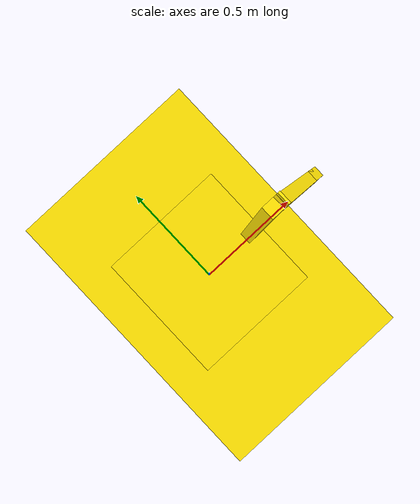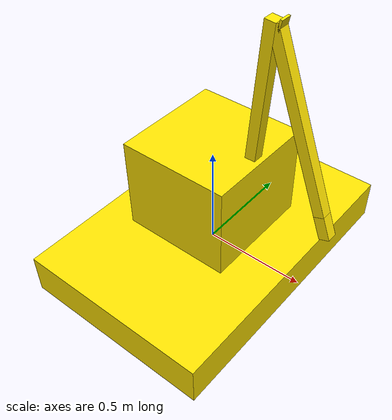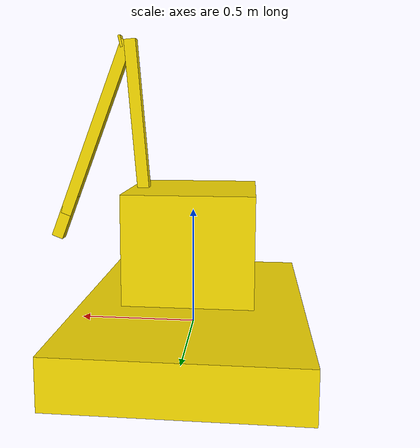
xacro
<?xml version="1.0"?>

<robot xmlns:xacro="http://ros.org/wiki/xacro" name="typepyt">

  <xacro:macro name="box_inertial" params="x y z mass *origin">
    <inertial>
      <mass value="${mass}" />
      <xacro:insert_block name="origin" />
      <inertia ixx="${0.0833333 * mass * (y*y + z*z)}" ixy="0.0" ixz="0.0"
        iyy="${0.0833333 * mass * (x*x + z*z)}" iyz="0.0"
        izz="${0.0833333 * mass * (x*x + y*y)}" />
    </inertial>
  </xacro:macro>

  <xacro:property name="material_yellow">
    <material name="yellow">
      <color rgba="${255/255} ${226/255} ${0/255} 1"/>
    </material>
  </xacro:property>

  <xacro:macro name="mimic_joint_plugin_gazebo" params="name_prefix parent_joint mimic_joint has_pid:=false multiplier:=1.0 offset:=0 sensitiveness:=0.0 max_effort:=1.0 robot_namespace:=''">
    <gazebo>
      <plugin name="${name_prefix}mimic_joint_plugin" filename="libroboticsgroup_gazebo_mimic_joint_plugin.so">
        <joint>${parent_joint}</joint>
        <mimicJoint>${mimic_joint}</mimicJoint>
        <xacro:if value="${has_pid}">                     <!-- if set to true, PID parameters from "/gazebo_ros_control/pid_gains/${mimic_joint}" are loaded -->
          <hasPID />
        </xacro:if>
        <multiplier>${multiplier}</multiplier>
        <offset>${offset}</offset>
        <sensitiveness>${sensitiveness}</sensitiveness>   <!-- if absolute difference between setpoint and process value is below this threshold, do nothing; 0.0 = disable [rad] -->
        <maxEffort>${max_effort}</maxEffort>              <!-- only taken into account if has_pid:=true [Nm] -->
        <xacro:unless value="${robot_namespace == ''}">
          <robotNamespace>($robot_namespace)</robotNamespace>
        </xacro:unless>
      </plugin>
    </gazebo>
  </xacro:macro>

  <xacro:macro name="controller_plugin_gazebo" params="robot_namespace:=''">
    <gazebo>
      <plugin name="gazebo_ros_control" filename="libgazebo_ros_control.so">
        <xacro:unless value="${robot_namespace == ''}">
          <robotNamespace>($robot_namespace)</robotNamespace>
        </xacro:unless>
        <controlPeriod>0.001</controlPeriod>
      </plugin>
    </gazebo>
  </xacro:macro>

  <controller_plugin_gazebo />

  <!--world + base_link -->

  <link name="world" />

  <joint name="fixed" type="fixed">
    <origin xyz="0.0 0.0 0.0" />
    <parent link="world" />
    <child link="base_link" />
  </joint>

  <link name="base_link">
    <visual>
      <origin xyz="0 0 0"/>
      <geometry>
        <box size="0.95 1.425 0.2"/>
      </geometry>
      <xacro:insert_block name="material_yellow"/>
    </visual>
    <collision>
      <origin xyz="0 0 0"/>
      <geometry>
        <box size="0.95 1.425 0.2"/>
      </geometry>
    </collision>
    <xacro:box_inertial mass="1.0" x="0.18" y="0.8" z="0.25">
      <origin xyz="0 0 0" />
    </xacro:box_inertial>
  </link>
  <gazebo reference="base_link">
    <material>Gazebo/Yellow</material>
  </gazebo>

  <!-- base_link + torso -->

  <joint name="hip" type="revolute">
    <origin xyz="0 0 0.12" rpy="0 0 0"/>
    <parent link="base_link"/>
    <child link="torso"/>
    <axis xyz="0 0 1"/>
    <limit lower="0.0" upper="3.14" velocity="1.0" effort="30" />
    <dynamics damping="0.05" friction="0.0" />
  </joint>

  <link name="torso">
    <visual>
      <origin xyz="0 0 0.25"/>
      <geometry>
        <box size="0.53 0.55 0.45"/>
      </geometry>
      <xacro:insert_block name="material_yellow" />
    </visual>
    <collision>
      <origin xyz="0 0 0.25"/>
      <geometry>
        <box size="0.53 0.55 0.45"/>
      </geometry>
    </collision>
    <xacro:box_inertial mass="1.0" x="0.04" y="0.04" z="0.05">
      <origin xyz="0 0 0.25"/>
    </xacro:box_inertial>
  </link>
  <gazebo reference="torso">
    <material>Gazebo/Yellow</material>
  </gazebo>

  <transmission name="tran0">
    <type>transmission_interface/SimpleTransmission</type>
    <joint name="hip">
      <hardwareInterface>hardware_interface/PositionJointInterface</hardwareInterface>
    </joint>
    <actuator name="motor0">
      <hardwareInterface>PositionJointInterface</hardwareInterface>
      <mechanicalReduction>1</mechanicalReduction>
    </actuator>
  </transmission>

  <!-- torso + upper_arm -->

  <joint name="shoulder" type="revolute">
    <origin xyz="0.2 0 0.3" rpy="0 -1.5708 0"/>
    <parent link="torso"/>
    <child link="upper_arm"/>
    <axis xyz="0 1 0"/>
    <limit lower="0.52" upper="2.79" velocity="1.0" effort="30.0" />
    <dynamics damping="0.05" friction="0.0" />
  </joint>

  <link name="upper_arm">
    <visual>
      <origin xyz="0 0 0.4"/>
      <geometry>
        <box size="0.05 0.05 0.8"/>
      </geometry>
      <xacro:insert_block name="material_yellow" />
    </visual>
    <collision>
      <origin xyz="0 0 0.4"/>
      <geometry>
        <box size="0.05 0.05 0.8"/>
      </geometry>
    </collision>
    <xacro:box_inertial mass="1.0" x="0.16" y="0.16" z="0.32">
      <origin xyz="0 0 0"/>
    </xacro:box_inertial>
  </link>
  <gazebo reference="upper_arm">
    <material>Gazebo/Yellow</material>
  </gazebo>

  <transmission name="tran1">
    <type>transmission_interface/SimpleTransmission</type>
    <joint name="shoulder">
      <hardwareInterface>hardware_interface/PositionJointInterface</hardwareInterface>
    </joint>
    <actuator name="motor1">
      <hardwareInterface>PositionJointInterface</hardwareInterface>
      <mechanicalReduction>1</mechanicalReduction>
    </actuator>
  </transmission>

  <!-- upper_arm + upper_arm1 -->

  <joint name="elbow" type="revolute">
    <origin xyz="0 0 0.8" rpy="0 3.36 0" />
    <parent link="upper_arm" />
    <child link="upper_arm1" />
    <axis xyz="0 -1 0"/>
    <limit lower="0.87" upper="2.44" velocity="1.0" effort="30.0" />
    <mimic joint="shoulder" multiplier="1" offset="0" />
    <dynamics damping="0.0" friction="0.0" />
  </joint>

  <xacro:mimic_joint_plugin_gazebo name_prefix="elbow"
    parent_joint="shoulder" mimic_joint="elbow"
    has_pid="true" multiplier="1.0" max_effort="10.0" />

  <link name="upper_arm1">
    <visual>
      <origin xyz="0 0 0.04"/>
      <geometry>
        <box size="0.05 0.05 0.01"/>
      </geometry>
      <xacro:insert_block name="material_yellow" />
    </visual>
    <collision>
      <origin xyz="0 0 0.4"/>
      <geometry>
        <box size="0.05 0.05 0.01"/>
      </geometry>
    </collision>
    <xacro:box_inertial mass="1.0" x="0.04" y="0.04" z="0.05">
      <origin xyz="0.05 0.05 0.01"/>
    </xacro:box_inertial>
  </link>
  <gazebo reference="upper_arm1">
    <material>Gazebo/Yellow</material>
  </gazebo>

  <!-- upper_arm1 + lower_arm -->

  <joint name="elbow1" type="revolute">
    <origin xyz="0 0 0.01" rpy="0 3.36 0"/>
    <parent link="upper_arm1"/>
    <child link="lower_arm"/>
    <axis xyz="0 -1 0"/>
    <limit lower="1.75" upper="3.0" velocity="1.0" effort="30.0" />
    <dynamics damping="0.05" friction="0.0" />
  </joint>

  <link name="lower_arm">
    <visual>
      <origin xyz="0 0 0.4"/>
      <geometry>
        <box size="0.05 0.05 0.79"/>
      </geometry>
      <xacro:insert_block name="material_yellow" />
    </visual>
    <collision>
      <origin xyz="0 0 0.4"/>
      <geometry>
        <box size="0.05 0.05 0.79"/>
      </geometry>
    </collision>
    <xacro:box_inertial mass="1.0" x="0.16" y="0.16" z="0.32">
      <origin xyz="0 0 0.4"/>
    </xacro:box_inertial>
  </link>
  <gazebo reference="lower_arm">
    <material>Gazebo/Yellow</material>
  </gazebo>

  <transmission name="tran2">
    <type>transmission_interface/SimpleTransmission</type>
    <joint name="elbow1">
      <hardwareInterface>hardware_interface/PositionJointInterface</hardwareInterface>
    </joint>
    <actuator name="motor2">
      <hardwareInterface>PositionJointInterface</hardwareInterface>
      <mechanicalReduction>1</mechanicalReduction>
    </actuator>
  </transmission>

  <!-- lower_arm + hand -->

  <joint name="wrist" type="revolute">
    <origin xyz="0 0 0.805" rpy="0 0 0"/>
    <parent link="lower_arm"/>
    <child link="hand"/>
    <axis xyz="1 0 0"/>
    <limit lower="0.0" upper="2.7" velocity="1.0" effort="30.0" />
    <dynamics damping="0.05" friction="0.0" />
  </joint>

  <link name="hand">
    <visual>
      <origin xyz="0 0 0"/>
      <geometry>
        <box size="0.05 0.05 0.2"/>
      </geometry>
      <xacro:insert_block name="material_yellow" />
    </visual>
    <collision>
      <origin xyz="0 0 0"/>
      <geometry>
        <box size="0.05 0.05 0.2"/>
      </geometry>
    </collision>
    <xacro:box_inertial mass="1.0" x="0.0004" y="0.0004" z="0.002">
      <origin xyz="0 0 0"/>
    </xacro:box_inertial>
  </link>
  <gazebo reference="hand">
    <material>Gazebo/Yellow</material>
  </gazebo>

  <transmission name="tran3">
    <type>transmission_interface/SimpleTransmission</type>
    <joint name="wrist">
      <hardwareInterface>hardware_interface/PositionJointInterface</hardwareInterface>
    </joint>
    <actuator name="motor3">
      <hardwareInterface>PositionJointInterface</hardwareInterface>
      <mechanicalReduction>1</mechanicalReduction>
    </actuator>
  </transmission>

  <gazebo>
    <plugin name="control" filename="libgazebo_ros_control.so"/>
  </gazebo>
  <gazebo>
    <plugin name="joint_state_publisher" filename="libgazebo_ros_joint_state_publisher.so">
      <jointName>hip, shoulder, elbow, wrist</jointName>
    </plugin>
  </gazebo>
</robot>
